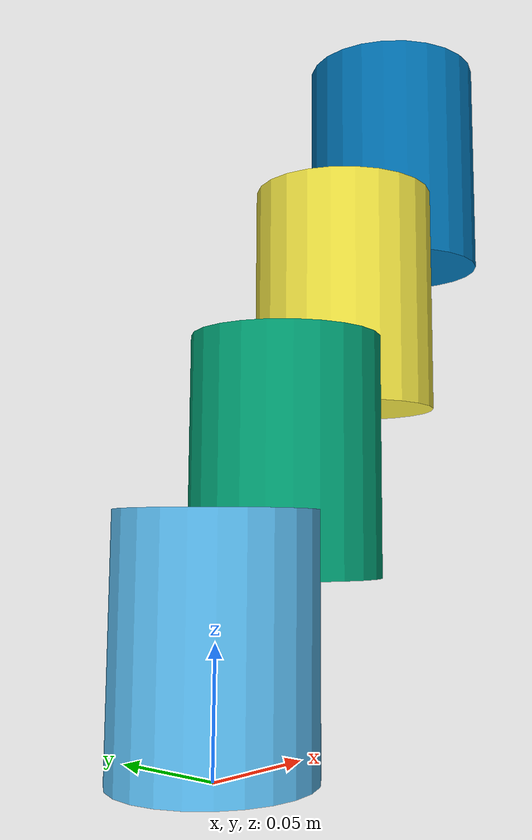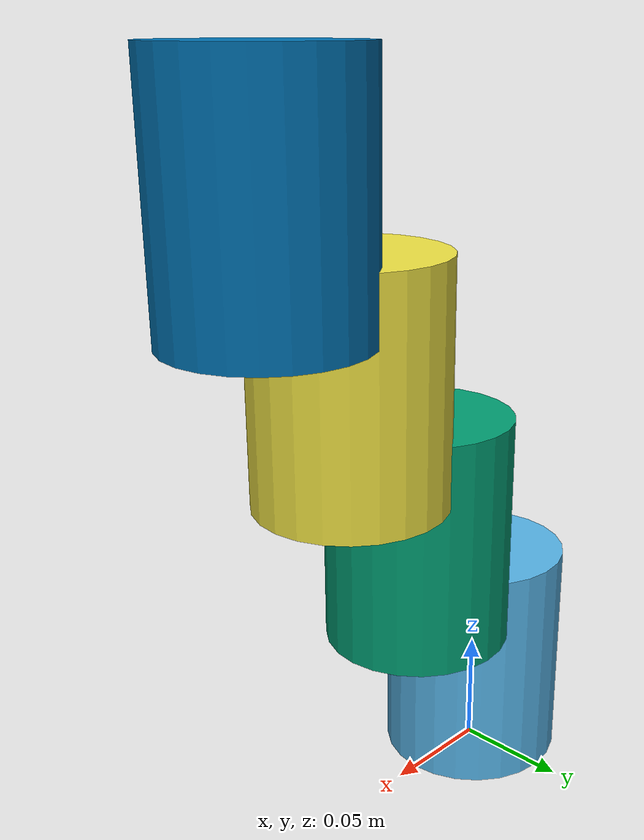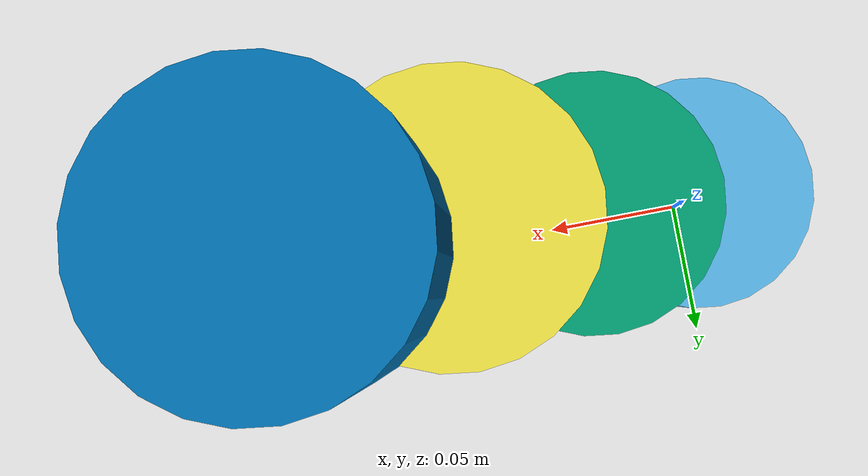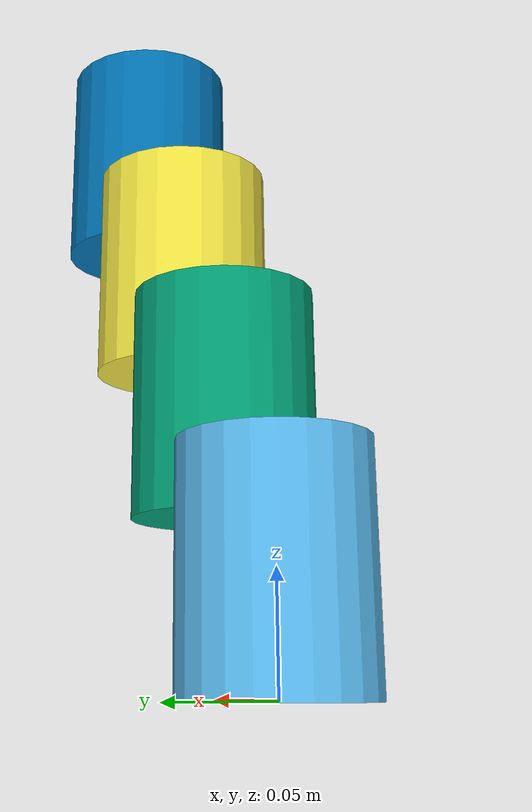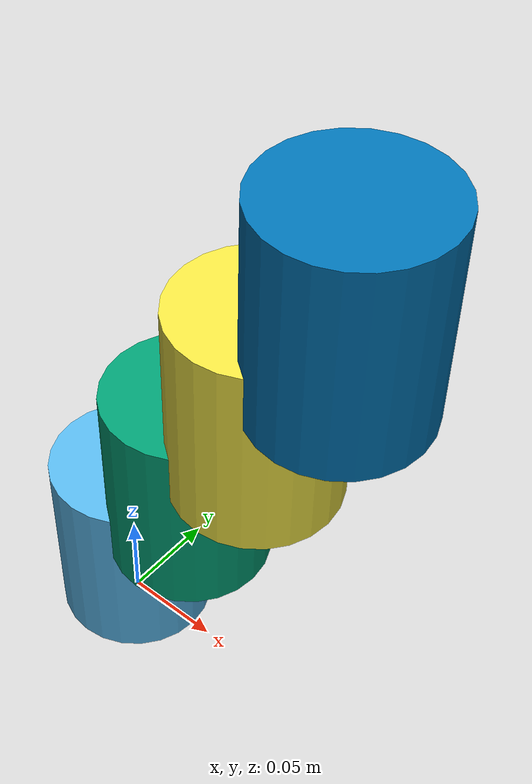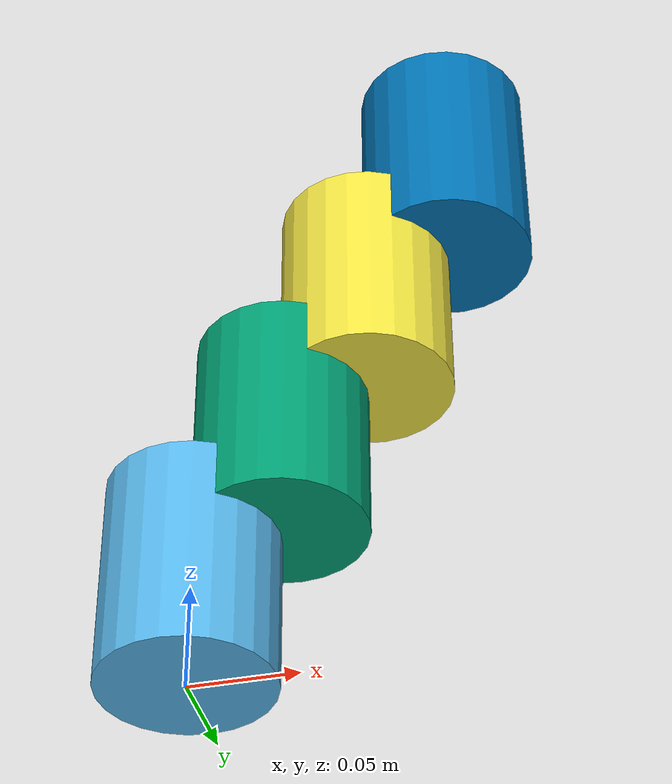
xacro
<?xml version="1.0"?>
<robot xmlns:xacro="http://www.ros.org/wiki/xacro" name="motors">

    <xacro:property name="height1" value="0.1"/>
    <xacro:property name="width" value="0.02"/>

    <link name="world"/>

    <joint name="joint0" type="fixed">
        <parent link="world"/>
        <child link="link1"/>
        <origin xyz="0.0 0.0 0.0" rpy="0.0 0.0 0.0"/>
    </joint>

    <link name="link1">
        <collision>
            <origin xyz="0.0 0.0 ${height1/2}" rpy="0.0 0.0 0.0"/>
            <geometry>
                <cylinder radius="${width*2}" length="${height1}"/>
            </geometry>
        </collision>
        <visual>
            <origin xyz="0.0 0.0 ${height1/2}" rpy="0.0 0.0 0.0"/>
            <geometry>
                <cylinder radius="${width*2}" length="${height1}"/>
            </geometry>
        </visual>
        <inertial>
            <origin xyz="0.0 0.0 ${height1/2}" rpy="0.0 0.0 0.0"/>
            <mass value="1"/>
            <inertia ixx="3" ixy="0.0" ixz="0.0" iyy="3" iyz="0.0" izz="3"/>
        </inertial>
    </link>

    <joint name="motor1" type="prismatic">
        <parent link="link1"/>
        <child link="link2"/>
        <axis xyz="0 0 1"/>
        <limit lower="0" upper="0.027" velocity="0.01" effort="1000.0"/>
        <origin xyz="${width*2} 0 ${height1 - 0.027}" rpy="0 0 0"/>
    </joint>

    <link name="link2">
        <collision>
            <origin xyz="0.0 0.0 ${height1/2}" rpy="0.0 0.0 0.0"/>
            <geometry>
                <cylinder radius="${width*2}" length="${height1}"/>
            </geometry>
        </collision>
        <visual>
            <origin xyz="0.0 0.0 ${height1/2}" rpy="0.0 0.0 0.0"/>
            <geometry>
                <cylinder radius="${width*2}" length="${height1}"/>
            </geometry>
        </visual>
        <inertial>
            <origin xyz="0.0 0.0 ${height1/2}" rpy="0.0 0.0 0.0"/>
            <mass value="1"/>
            <inertia ixx="3" ixy="0.0" ixz="0.0" iyy="3" iyz="0.0" izz="3"/>
        </inertial>
    </link>

    <joint name="motor2" type="prismatic">
        <parent link="link2"/>
        <child link="link3"/>
        <axis xyz="0 0 1"/>
        <limit lower="0" upper="0.027" velocity="0.01" effort="1000.0"/>
        <origin xyz="${width*2} 0 ${height1 - 0.027}" rpy="0 0 0"/>
    </joint>

    <link name="link3">
        <collision>
            <origin xyz="0.0 0.0 ${height1/2}" rpy="0.0 0.0 0.0"/>
            <geometry>
                <cylinder radius="${width*2}" length="${height1}"/>
            </geometry>
        </collision>
        <visual>
            <origin xyz="0.0 0.0 ${height1/2}" rpy="0.0 0.0 0.0"/>
            <geometry>
                <cylinder radius="${width*2}" length="${height1}"/>
            </geometry>
        </visual>
        <inertial>
            <origin xyz="0.0 0.0 ${height1/2}" rpy="0.0 0.0 0.0"/>
            <mass value="1"/>
            <inertia ixx="3" ixy="0.0" ixz="0.0" iyy="3" iyz="0.0" izz="3"/>
        </inertial>
    </link>

    <joint name="motor3" type="prismatic">
        <parent link="link3"/>
        <child link="link4"/>
        <axis xyz="0 0 1"/>
        <limit lower="0" upper="0.027" velocity="0.01" effort="1000.0"/>
        <origin xyz="${width*2} 0 ${height1 - 0.027}" rpy="0 0 0"/>
    </joint>

    <link name="link4">
        <collision>
            <origin xyz="0.0 0.0 ${height1/2}" rpy="0.0 0.0 0.0"/>
            <geometry>
                <cylinder radius="${width*2}" length="${height1}"/>
            </geometry>
        </collision>
        <visual>
            <origin xyz="0.0 0.0 ${height1/2}" rpy="0.0 0.0 0.0"/>
            <geometry>
                <cylinder radius="${width*2}" length="${height1}"/>
            </geometry>
        </visual>
        <inertial>
            <origin xyz="0.0 0.0 ${height1/2}" rpy="0.0 0.0 0.0"/>
            <mass value="1"/>
            <inertia ixx="3" ixy="0.0" ixz="0.0" iyy="3" iyz="0.0" izz="3"/>
        </inertial>
    </link>

    <gazebo>
        <plugin name="gazebo_ros_control" filename="libgazebo_ros_control.so">
        <robotNamespace>/motors</robotNamespace>
        <robotSimType>gazebo_ros_control/DefaultRobotHWSim</robotSimType>
        </plugin>
    </gazebo>

    <transmission name="tran1">
        <type>transmission_interface/SimpleTransmission</type>
        <joint name="motor1">
            <hardwareInterface>hardware_interface/PositionJointInterface</hardwareInterface>
        </joint>
        <actuator name="motor1">
            <hardwareInterface>hardware_interface/PositionJointInterface</hardwareInterface>
            <mechanicalReduction>1</mechanicalReduction>
        </actuator>
    </transmission>

    <transmission name="tran2">
        <type>transmission_interface/SimpleTransmission</type>
        <joint name="motor2">
            <hardwareInterface>hardware_interface/PositionJointInterface</hardwareInterface>
        </joint>
        <actuator name="motor2">
            <hardwareInterface>hardware_interface/PositionJointInterface</hardwareInterface>
            <mechanicalReduction>1</mechanicalReduction>
        </actuator>
    </transmission>

    <transmission name="tran3">
        <type>transmission_interface/SimpleTransmission</type>
        <joint name="motor3">
            <hardwareInterface>hardware_interface/PositionJointInterface</hardwareInterface>
        </joint>
        <actuator name="motor3">
            <hardwareInterface>hardware_interface/PositionJointInterface</hardwareInterface>
            <mechanicalReduction>1</mechanicalReduction>
        </actuator>
    </transmission>

</robot>
